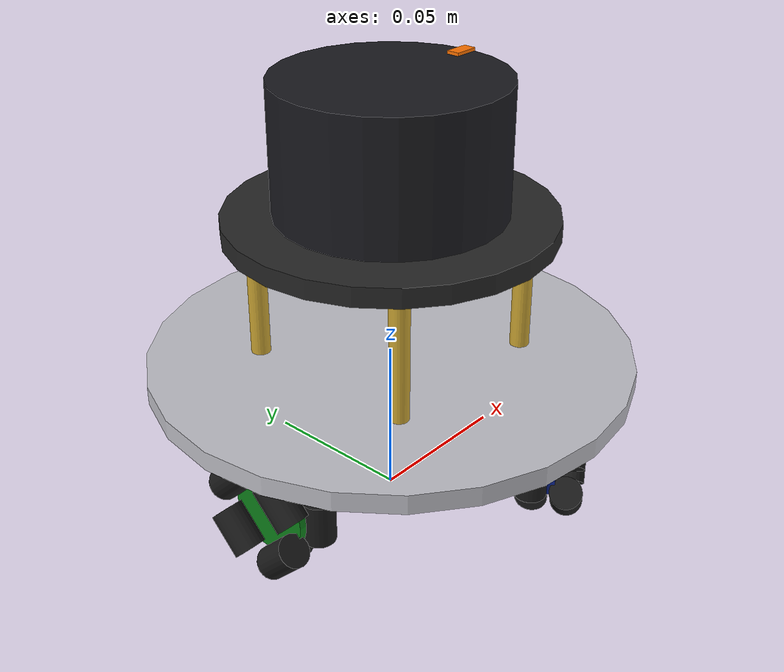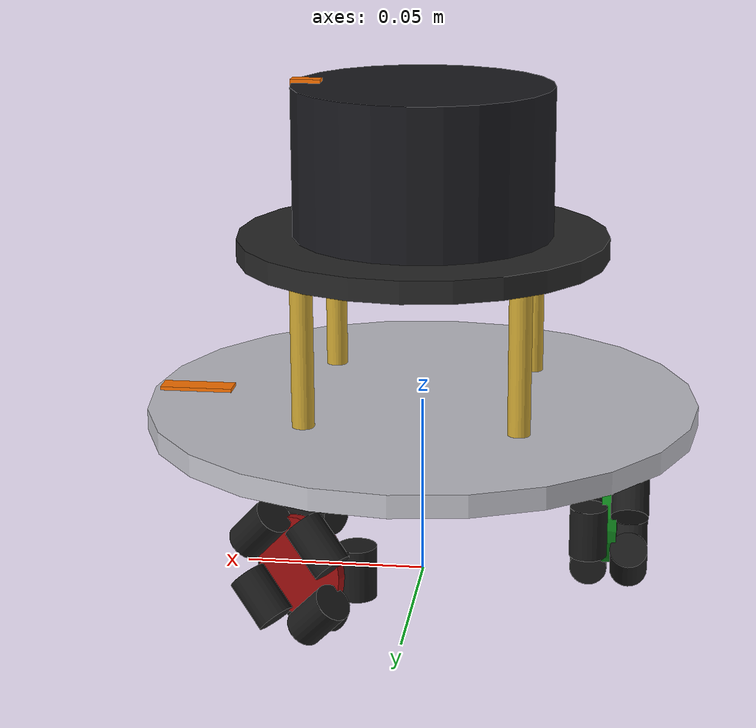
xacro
<?xml version="1.0"?>
<robot name="hb_bot" xmlns:xacro="http://www.ros.org/wiki/xacro">

  <xacro:arg name="sim_mode" default="true"/>
  <xacro:arg name="use_meshes" default="false"/>
  <xacro:arg name="controllers_file" default="$(find hb_description)/config/controllers.yaml"/>
  <xacro:arg name="lidar_yaw" default="0.0"/>

  <xacro:property name="sim_mode" value="$(arg sim_mode)"/>
  <xacro:property name="use_meshes" value="$(arg use_meshes)"/>

  <!-- ===================== Robot dimensions (edit these for your build) ===================== -->
  <!-- Must match the kiwi_drive parameters in hb_control/config/kiwi_drive.yaml -->
  <xacro:property name="wheel_radius"      value="0.019"/>   <!-- m, roller outer radius -->
  <xacro:property name="wheel_base_radius" value="0.052"/>   <!-- m, robot centre to wheel centre -->
  <!-- Wheel positions measured CCW from the robot's forward (+x) axis -->
  <xacro:property name="left_wheel_angle"  value="${radians(60)}"/>
  <xacro:property name="right_wheel_angle" value="${radians(-60)}"/>
  <xacro:property name="back_wheel_angle"  value="${radians(180)}"/>

  <xacro:property name="chassis_radius"    value="0.075"/>
  <xacro:property name="chassis_thickness" value="0.006"/>
  <xacro:property name="chassis_z"         value="0.029"/>   <!-- plate centre above axle -->
  <xacro:property name="base_mass"         value="0.15"/>

  <xacro:property name="standoff_height"   value="0.040"/>
  <xacro:property name="deck_radius"       value="0.050"/>
  <xacro:property name="deck_thickness"    value="0.006"/>

  <xacro:property name="lidar_radius"      value="0.035"/>
  <xacro:property name="lidar_height"      value="0.040"/>
  <xacro:property name="lidar_scan_offset" value="0.025"/>   <!-- scan plane above lidar base -->
  <xacro:property name="lidar_mass"        value="0.10"/>
  <xacro:property name="lidar_x"           value="0.0"/>
  <xacro:property name="lidar_y"           value="0.0"/>

  <xacro:property name="mesh_dir" value="package://hb_description/meshes"/>

  <xacro:include filename="$(find hb_description)/urdf/inertial_macros.xacro"/>
  <xacro:include filename="$(find hb_description)/urdf/materials.xacro"/>
  <xacro:include filename="$(find hb_description)/urdf/omni_wheel.xacro"/>
  <xacro:include filename="$(find hb_description)/urdf/lidar.xacro"/>

  <!-- ===================== Base ===================== -->
  <link name="base_footprint"/>

  <joint name="base_footprint_joint" type="fixed">
    <parent link="base_footprint"/>
    <child link="base_link"/>
    <origin xyz="0 0 ${wheel_radius}" rpy="0 0 0"/>
  </joint>

  <link name="base_link">
    <visual>
      <xacro:if value="${use_meshes}">
        <!-- The original mesh was modelled with its front along +y, so turn it to face +x -->
        <origin xyz="0 0 0" rpy="0 0 ${-pi/2}"/>
        <geometry><mesh filename="${mesh_dir}/bot.dae"/></geometry>
      </xacro:if>
      <xacro:unless value="${use_meshes}">
        <origin xyz="0 0 ${chassis_z}" rpy="0 0 0"/>
        <geometry><cylinder radius="${chassis_radius}" length="${chassis_thickness}"/></geometry>
        <material name="chassis_grey"/>
      </xacro:unless>
    </visual>
    <!-- Little arrow on the plate so students can see which way is forward -->
    <visual>
      <origin xyz="${chassis_radius - 0.012} 0 ${chassis_z + chassis_thickness/2}" rpy="0 0 0"/>
      <geometry><box size="0.02 0.006 0.002"/></geometry>
      <material name="front_orange"/>
    </visual>
    <collision>
      <origin xyz="0 0 ${chassis_z}" rpy="0 0 0"/>
      <geometry><cylinder radius="${chassis_radius}" length="${chassis_thickness}"/></geometry>
    </collision>
    <inertial>
      <origin xyz="0 0 0" rpy="0 0 0"/>
      <mass value="${base_mass}"/>
      <inertia ixx="0.0004332" ixy="0" ixz="0" iyy="0.0004332" iyz="0" izz="0.0008214"/>
    </inertial>
  </link>

  <!-- ===================== Omni wheels ===================== -->
  <xacro:omni_wheel name="left"  angle="${left_wheel_angle}"  material="rim_red"/>
  <xacro:omni_wheel name="right" angle="${right_wheel_angle}" material="rim_blue"/>
  <xacro:omni_wheel name="back"  angle="${back_wheel_angle}"  material="rim_green"/>

  <!-- ===================== Lidar ===================== -->
  <xacro:lidar parent="base_link"
               mount_z="${chassis_z + chassis_thickness/2}"
               yaw="$(arg lidar_yaw)"/>

  <!-- ===================== Simulation only ===================== -->
  <xacro:if value="${sim_mode}">
    <xacro:include filename="$(find hb_description)/urdf/hb_bot.ros2_control.xacro"/>
    <xacro:include filename="$(find hb_description)/urdf/hb_bot.gazebo.xacro"/>
  </xacro:if>

</robot>

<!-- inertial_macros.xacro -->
<!-- Inertia of simple solid shapes (centre of mass at the link origin unless xyz is given) -->
<robot xmlns:xacro="http://www.ros.org/wiki/xacro">

  <xacro:macro name="inertial_cylinder" params="mass radius length xyz:='0 0 0'">
    <inertial>
      <origin xyz="${xyz}" rpy="0 0 0"/>
      <mass value="${mass}"/>
      <inertia ixx="${mass*(3*radius*radius + length*length)/12}" ixy="0" ixz="0"
               iyy="${mass*(3*radius*radius + length*length)/12}" iyz="0"
               izz="${mass*radius*radius/2}"/>
    </inertial>
  </xacro:macro>

  <xacro:macro name="inertial_box" params="mass x y z xyz:='0 0 0'">
    <inertial>
      <origin xyz="${xyz}" rpy="0 0 0"/>
      <mass value="${mass}"/>
      <inertia ixx="${mass*(y*y + z*z)/12}" ixy="0" ixz="0"
               iyy="${mass*(x*x + z*z)/12}" iyz="0"
               izz="${mass*(x*x + y*y)/12}"/>
    </inertial>
  </xacro:macro>

</robot>

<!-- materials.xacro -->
<robot xmlns:xacro="http://www.ros.org/wiki/xacro">
  <material name="chassis_grey"><color rgba="0.75 0.75 0.78 1"/></material>
  <material name="deck_black"><color rgba="0.15 0.15 0.15 1"/></material>
  <material name="standoff_gold"><color rgba="0.8 0.65 0.2 1"/></material>
  <material name="lidar_dark"><color rgba="0.1 0.1 0.12 1"/></material>
  <material name="front_orange"><color rgba="1.0 0.45 0.0 1"/></material>
  <material name="rim_red"><color rgba="0.6 0.05 0.05 1"/></material>
  <material name="rim_blue"><color rgba="0.05 0.15 0.6 1"/></material>
  <material name="rim_green"><color rgba="0.05 0.5 0.1 1"/></material>
  <material name="roller_black"><color rgba="0.1 0.1 0.1 1"/></material>
</robot>

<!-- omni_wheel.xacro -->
<robot xmlns:xacro="http://www.ros.org/wiki/xacro">

  <xacro:property name="roller_offset"  value="0.01355"/>  <!-- rim axis to roller axis -->
  <xacro:property name="roller_row_gap" value="0.0055"/>   <!-- each row sits +-this along the axle -->
  <xacro:property name="roller_radius"  value="0.0051"/>
  <xacro:property name="roller_length"  value="0.0138"/>
  <xacro:property name="roller_mass"    value="0.00113845"/>
  <xacro:property name="roller_names"   value="${['e', 'ne', 'n', 'nw', 'w', 'sw', 's', 'se']}"/>

  <!-- One passive roller, number k (0..7), every 45 degrees around the rim -->
  <xacro:macro name="omni_roller" params="wheel k">
    <xacro:property name="a" value="${k * pi / 4}"/>
    <xacro:property name="roller" value="roller_${roller_names[k]}_rim_${wheel}"/>

    <link name="${roller}_link">
      <inertial>
        <mass value="${roller_mass}"/>
        <inertia ixx="2.53776e-08" ixy="0" ixz="0" iyy="2.53776e-08" iyz="0" izz="1.47666e-08"/>
      </inertial>
      <visual>
        <xacro:if value="${use_meshes}">
          <geometry><mesh filename="${mesh_dir}/roller.stl"/></geometry>
        </xacro:if>
        <xacro:unless value="${use_meshes}">
          <geometry><cylinder radius="${roller_radius}" length="${roller_length}"/></geometry>
        </xacro:unless>
        <material name="roller_black"/>
      </visual>
      <collision>
        <geometry><cylinder radius="${roller_radius}" length="${roller_length}"/></geometry>
      </collision>
    </link>

    <!-- Rollers spin freely in simulation; on the real robot TF only needs them fixed -->
    <joint name="${roller}_joint" type="${'continuous' if sim_mode else 'fixed'}">
      <parent link="rim_${wheel}_link"/>
      <child link="${roller}_link"/>
      <origin xyz="${roller_offset*cos(a)} ${roller_offset*sin(a)} ${roller_row_gap if k % 2 == 0 else -roller_row_gap}"
              rpy="${-pi/2} 0 ${a}"/>
      <xacro:if value="${sim_mode}">
        <axis xyz="0 0 1"/>
      </xacro:if>
    </joint>

    <gazebo reference="${roller}_link">
      <mu1>1.0</mu1>
      <mu2>1.0</mu2>
    </gazebo>

    <xacro:if value="${k &lt; 7}">
      <xacro:omni_roller wheel="${wheel}" k="${k + 1}"/>
    </xacro:if>
  </xacro:macro>

  <!--
    name     left / right / back
    angle    position around the robot, CCW from +x (radians)
  -->
  <xacro:macro name="omni_wheel" params="name angle material">
    <link name="rim_${name}_link">
      <inertial>
        <origin xyz="0 0 -0.000343"/>
        <mass value="0.00835758"/>
        <inertia ixx="6.63684e-07" ixy="0" ixz="0" iyy="6.63684e-07" iyz="0" izz="9.40333e-07"/>
      </inertial>
      <visual>
        <xacro:if value="${use_meshes}">
          <geometry><mesh filename="${mesh_dir}/rim.stl"/></geometry>
        </xacro:if>
        <xacro:unless value="${use_meshes}">
          <geometry><cylinder radius="${roller_offset}" length="0.004"/></geometry>
        </xacro:unless>
        <material name="${material}"/>
      </visual>
      <!-- no rim collision: only the rollers touch the ground -->
    </link>

    <joint name="rim_${name}_joint" type="continuous">
      <parent link="base_link"/>
      <child link="rim_${name}_link"/>
      <origin xyz="${wheel_base_radius*cos(angle)} ${wheel_base_radius*sin(angle)} 0"
              rpy="${pi/2} 0 ${angle - pi/2}"/>
      <axis xyz="0 0 1"/>
    </joint>

    <xacro:omni_roller wheel="${name}" k="0"/>
  </xacro:macro>

</robot>

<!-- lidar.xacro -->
<!--
  2D lidar on a small deck held up by 4 standoffs.
  Roughly the size of an RPLidar A1/C1. The lidar_link origin is the scan
  plane, which is the frame_id of the /scan messages.
-->
<robot xmlns:xacro="http://www.ros.org/wiki/xacro">

  <xacro:macro name="standoff" params="angle">
    <visual>
      <origin xyz="${0.04*cos(angle)} ${0.04*sin(angle)} ${standoff_height/2}" rpy="0 0 0"/>
      <geometry><cylinder radius="0.003" length="${standoff_height}"/></geometry>
      <material name="standoff_gold"/>
    </visual>
  </xacro:macro>

  <xacro:macro name="lidar" params="parent mount_z yaw">

    <!-- Deck the lidar is bolted to -->
    <joint name="lidar_mount_joint" type="fixed">
      <parent link="${parent}"/>
      <child link="lidar_mount_link"/>
      <origin xyz="0 0 ${mount_z}" rpy="0 0 0"/>
    </joint>

    <link name="lidar_mount_link">
      <xacro:standoff angle="${radians(45)}"/>
      <xacro:standoff angle="${radians(135)}"/>
      <xacro:standoff angle="${radians(225)}"/>
      <xacro:standoff angle="${radians(315)}"/>
      <visual>
        <origin xyz="0 0 ${standoff_height + deck_thickness/2}" rpy="0 0 0"/>
        <geometry><cylinder radius="${deck_radius}" length="${deck_thickness}"/></geometry>
        <material name="deck_black"/>
      </visual>
      <collision>
        <origin xyz="0 0 ${standoff_height + deck_thickness/2}" rpy="0 0 0"/>
        <geometry><cylinder radius="${deck_radius}" length="${deck_thickness}"/></geometry>
      </collision>
      <xacro:inertial_cylinder mass="0.03" radius="${deck_radius}" length="${deck_thickness}"
                               xyz="0 0 ${standoff_height + deck_thickness/2}"/>
    </link>

    <!-- The lidar itself -->
    <joint name="lidar_joint" type="fixed">
      <parent link="lidar_mount_link"/>
      <child link="lidar_link"/>
      <origin xyz="${lidar_x} ${lidar_y} ${standoff_height + deck_thickness + lidar_scan_offset}"
              rpy="0 0 ${yaw}"/>
    </joint>

    <link name="lidar_link">
      <visual>
        <origin xyz="0 0 ${lidar_height/2 - lidar_scan_offset}" rpy="0 0 0"/>
        <geometry><cylinder radius="${lidar_radius}" length="${lidar_height}"/></geometry>
        <material name="lidar_dark"/>
      </visual>
      <!-- marker showing the lidar's 0 degree direction -->
      <visual>
        <origin xyz="${lidar_radius - 0.004} 0 ${lidar_height - lidar_scan_offset}" rpy="0 0 0"/>
        <geometry><box size="0.008 0.004 0.002"/></geometry>
        <material name="front_orange"/>
      </visual>
      <collision>
        <origin xyz="0 0 ${lidar_height/2 - lidar_scan_offset}" rpy="0 0 0"/>
        <geometry><cylinder radius="${lidar_radius}" length="${lidar_height}"/></geometry>
      </collision>
      <xacro:inertial_cylinder mass="${lidar_mass}" radius="${lidar_radius}" length="${lidar_height}"
                               xyz="0 0 ${lidar_height/2 - lidar_scan_offset}"/>
    </link>

  </xacro:macro>
</robot>
